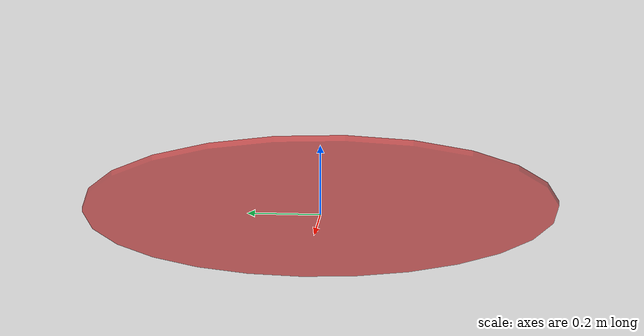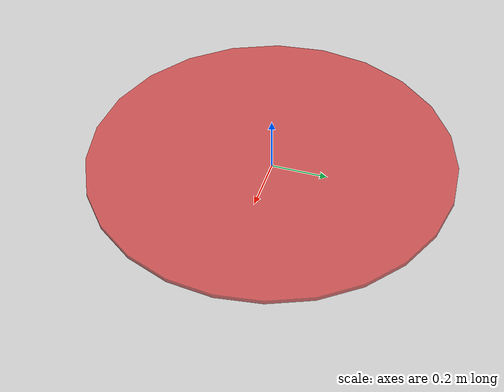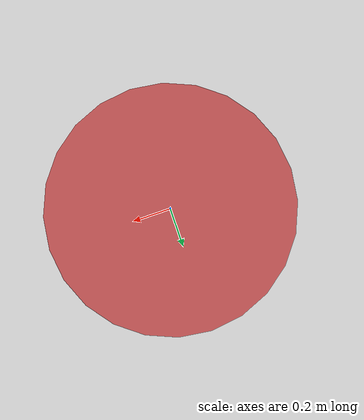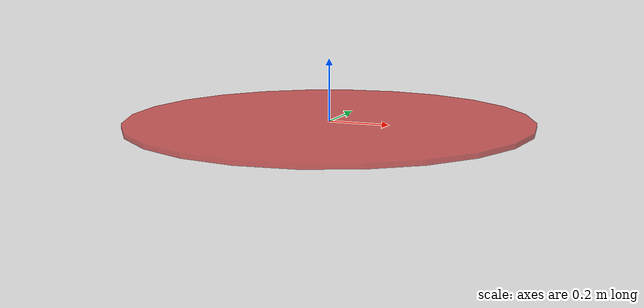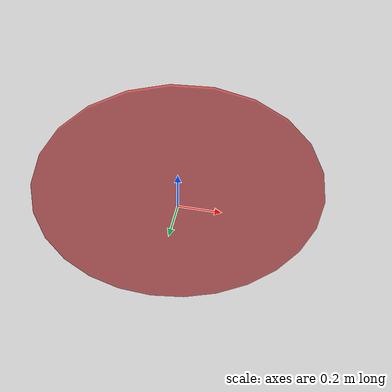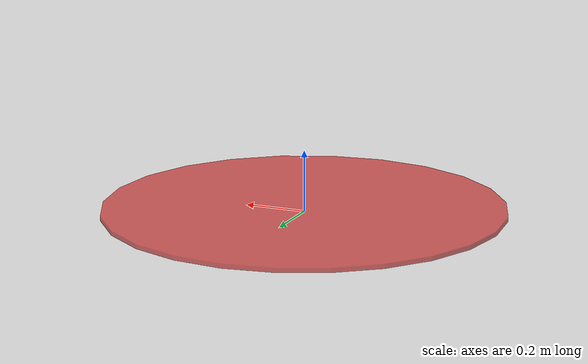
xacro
<?xml version="1.0"?>
<robot name="$(arg zone_name)" xmlns:xacro="http://www.ros.org/wiki/xacro">
  <xacro:arg name="zone_name" default="spawn_zone"/>
  <xacro:arg name="rgba" default="0.8 0.1 0.1 0.65"/>
  <xacro:arg name="gazebo_material" default="Gazebo/Red"/>
  <xacro:arg name="radius" default="0.65"/>

  <link name="zone_link">
    <visual>
      <geometry>
        <cylinder radius="$(arg radius)" length="0.015"/>
      </geometry>
      <material name="zone_color">
        <color rgba="$(arg rgba)"/>
      </material>
    </visual>
  </link>

  <!-- Visual-only and static: spawn zones never affect navigation collisions. -->
  <gazebo>
    <static>true</static>
  </gazebo>
  <gazebo reference="zone_link">
    <material>$(arg gazebo_material)</material>
  </gazebo>
</robot>
